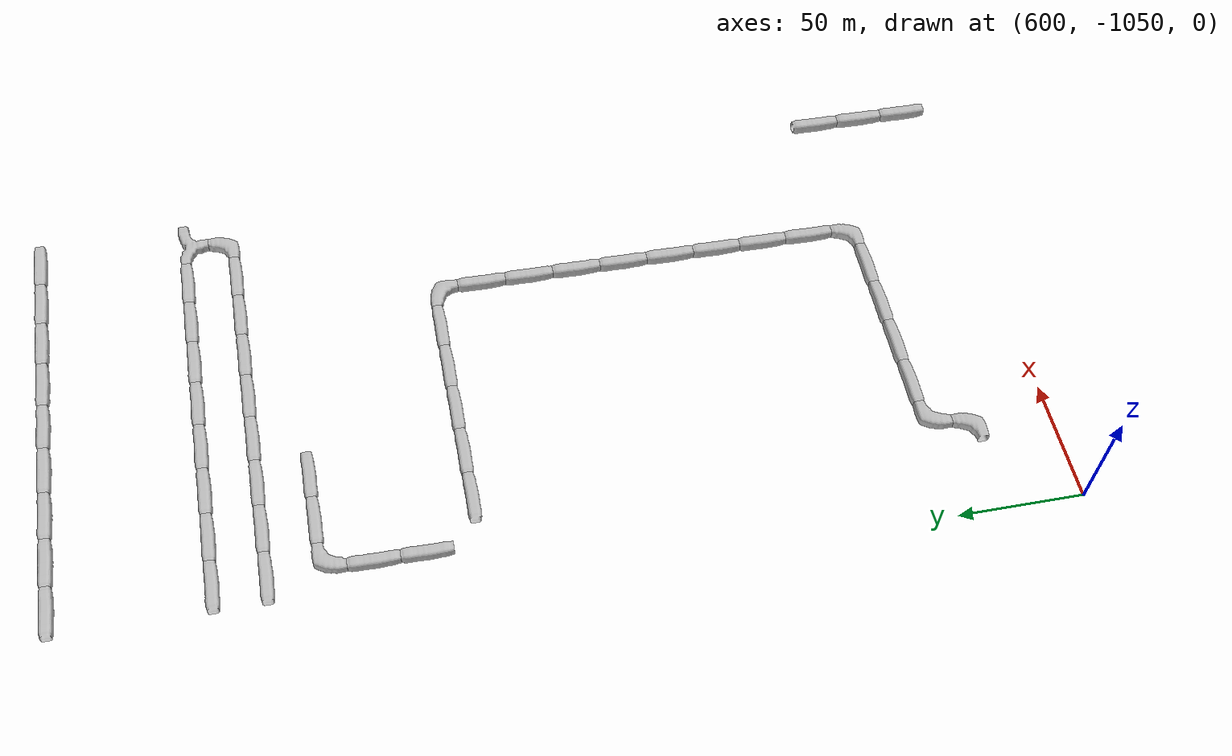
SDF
<sdf version="1.6">
 <world name="cave_32000_4">
  <include>
   <static>true</static>
   <name>cave_31_-37</name>
   <pose>620 -740 0 0 0 1.5707963267948966</pose>
   <uri>model://cave_straight_20m</uri>
  </include>
  <include>
   <static>true</static>
   <name>cave_32_-37</name>
   <pose>640 -740 0 0 0 1.5707963267948966</pose>
   <uri>model://cave_straight_20m</uri>
  </include>
  <include>
   <static>true</static>
   <name>cave_33_-37</name>
   <pose>660 -740 0 0 0 1.5707963267948966</pose>
   <uri>model://cave_straight_20m</uri>
  </include>
  <include>
   <static>true</static>
   <name>cave_34_-37</name>
   <pose>680 -740 0 0 0 1.5707963267948966</pose>
   <uri>model://cave_straight_20m</uri>
  </include>
  <include>
   <static>true</static>
   <name>cave_35_-37</name>
   <pose>700 -740 0 0 0 1.5707963267948966</pose>
   <uri>model://cave_straight_20m</uri>
  </include>
  <include>
   <static>true</static>
   <name>cave_36_-37</name>
   <pose>720 -740 0 0 0 1.5707963267948966</pose>
   <uri>model://cave_straight_20m</uri>
  </include>
  <include>
   <static>true</static>
   <name>cave_37_-37</name>
   <pose>740 -740 0 0 0 1.5707963267948966</pose>
   <uri>model://cave_straight_20m</uri>
  </include>
  <include>
   <static>true</static>
   <name>cave_38_-37</name>
   <pose>760 -740 0 0 0 1.5707963267948966</pose>
   <uri>model://cave_straight_20m</uri>
  </include>
  <include>
   <static>true</static>
   <name>cave_39_-37</name>
   <pose>780 -740 0 0 0 1.5707963267948966</pose>
   <uri>model://cave_L_20m</uri>
  </include>
  <include>
   <static>true</static>
   <name>cave_39_-36</name>
   <pose>780 -720 0 0 0 3.141592653589793</pose>
   <uri>model://cave_3way_20m</uri>
  </include>
  <include>
   <static>true</static>
   <name>cave_40_-50</name>
   <pose>800 -1000 0 0 0 0.0</pose>
   <uri>model://cave_straight_20m</uri>
  </include>
  <include>
   <static>true</static>
   <name>cave_40_-51</name>
   <pose>800 -1020 0 0 0 0.0</pose>
   <uri>model://cave_straight_20m</uri>
  </include>
  <include>
   <static>true</static>
   <name>cave_40_-52</name>
   <pose>800 -1040 0 0 0 0.0</pose>
   <uri>model://cave_straight_20m</uri>
  </include>
  <include>
   <static>true</static>
   <name>cave_38_-36</name>
   <pose>760 -720 0 0 0 1.5707963267948966</pose>
   <uri>model://cave_straight_20m</uri>
  </include>
  <include>
   <static>true</static>
   <name>cave_37_-36</name>
   <pose>740 -720 0 0 0 1.5707963267948966</pose>
   <uri>model://cave_straight_20m</uri>
  </include>
  <include>
   <static>true</static>
   <name>cave_36_-36</name>
   <pose>720 -720 0 0 0 1.5707963267948966</pose>
   <uri>model://cave_straight_20m</uri>
  </include>
  <include>
   <static>true</static>
   <name>cave_35_-36</name>
   <pose>700 -720 0 0 0 1.5707963267948966</pose>
   <uri>model://cave_straight_20m</uri>
  </include>
  <include>
   <static>true</static>
   <name>cave_34_-36</name>
   <pose>680 -720 0 0 0 1.5707963267948966</pose>
   <uri>model://cave_straight_20m</uri>
  </include>
  <include>
   <static>true</static>
   <name>cave_33_-36</name>
   <pose>660 -720 0 0 0 1.5707963267948966</pose>
   <uri>model://cave_straight_20m</uri>
  </include>
  <include>
   <static>true</static>
   <name>cave_32_-36</name>
   <pose>640 -720 0 0 0 1.5707963267948966</pose>
   <uri>model://cave_straight_20m</uri>
  </include>
  <include>
   <static>true</static>
   <name>cave_31_-36</name>
   <pose>620 -720 0 0 0 1.5707963267948966</pose>
   <uri>model://cave_straight_20m</uri>
  </include>
  <include>
   <static>true</static>
   <name>cave_31_-33</name>
   <pose>620 -660 0 0 0 1.5707963267948966</pose>
   <uri>model://cave_straight_20m</uri>
  </include>
  <include>
   <static>true</static>
   <name>cave_32_-33</name>
   <pose>640 -660 0 0 0 1.5707963267948966</pose>
   <uri>model://cave_straight_20m</uri>
  </include>
  <include>
   <static>true</static>
   <name>cave_33_-33</name>
   <pose>660 -660 0 0 0 1.5707963267948966</pose>
   <uri>model://cave_straight_20m</uri>
  </include>
  <include>
   <static>true</static>
   <name>cave_34_-33</name>
   <pose>680 -660 0 0 0 1.5707963267948966</pose>
   <uri>model://cave_straight_20m</uri>
  </include>
  <include>
   <static>true</static>
   <name>cave_35_-33</name>
   <pose>700 -660 0 0 0 1.5707963267948966</pose>
   <uri>model://cave_straight_20m</uri>
  </include>
  <include>
   <static>true</static>
   <name>cave_36_-33</name>
   <pose>720 -660 0 0 0 1.5707963267948966</pose>
   <uri>model://cave_straight_20m</uri>
  </include>
  <include>
   <static>true</static>
   <name>cave_37_-33</name>
   <pose>740 -660 0 0 0 1.5707963267948966</pose>
   <uri>model://cave_straight_20m</uri>
  </include>
  <include>
   <static>true</static>
   <name>cave_38_-33</name>
   <pose>760 -660 0 0 0 1.5707963267948966</pose>
   <uri>model://cave_straight_20m</uri>
  </include>
  <include>
   <static>true</static>
   <name>cave_39_-33</name>
   <pose>780 -660 0 0 0 1.5707963267948966</pose>
   <uri>model://cave_straight_20m</uri>
  </include>
  <include>
   <static>true</static>
   <name>cave_32_-51</name>
   <pose>640 -1020 0 0 0 1.5707963267948966</pose>
   <uri>model://cave_L_20m</uri>
  </include>
  <include>
   <static>true</static>
   <name>cave_32_-50</name>
   <pose>640 -1000 0 0 0 -1.5707963267948966</pose>
   <uri>model://cave_L_20m</uri>
  </include>
  <include>
   <static>true</static>
   <name>cave_33_-50</name>
   <pose>660 -1000 0 0 0 1.5707963267948966</pose>
   <uri>model://cave_straight_20m</uri>
  </include>
  <include>
   <static>true</static>
   <name>cave_34_-50</name>
   <pose>680 -1000 0 0 0 1.5707963267948966</pose>
   <uri>model://cave_straight_20m</uri>
  </include>
  <include>
   <static>true</static>
   <name>cave_35_-50</name>
   <pose>700 -1000 0 0 0 1.5707963267948966</pose>
   <uri>model://cave_straight_20m</uri>
  </include>
  <include>
   <static>true</static>
   <name>cave_36_-50</name>
   <pose>720 -1000 0 0 0 1.5707963267948966</pose>
   <uri>model://cave_straight_20m</uri>
  </include>
  <include>
   <static>true</static>
   <name>cave_37_-50</name>
   <pose>740 -1000 0 0 0 1.5707963267948966</pose>
   <uri>model://cave_L_20m</uri>
  </include>
  <include>
   <static>true</static>
   <name>cave_37_-49</name>
   <pose>740 -980 0 0 0 0.0</pose>
   <uri>model://cave_straight_20m</uri>
  </include>
  <include>
   <static>true</static>
   <name>cave_37_-48</name>
   <pose>740 -960 0 0 0 0.0</pose>
   <uri>model://cave_straight_20m</uri>
  </include>
  <include>
   <static>true</static>
   <name>cave_37_-47</name>
   <pose>740 -940 0 0 0 0.0</pose>
   <uri>model://cave_straight_20m</uri>
  </include>
  <include>
   <static>true</static>
   <name>cave_37_-46</name>
   <pose>740 -920 0 0 0 0.0</pose>
   <uri>model://cave_straight_20m</uri>
  </include>
  <include>
   <static>true</static>
   <name>cave_37_-45</name>
   <pose>740 -900 0 0 0 0.0</pose>
   <uri>model://cave_straight_20m</uri>
  </include>
  <include>
   <static>true</static>
   <name>cave_37_-44</name>
   <pose>740 -880 0 0 0 0.0</pose>
   <uri>model://cave_straight_20m</uri>
  </include>
  <include>
   <static>true</static>
   <name>cave_37_-43</name>
   <pose>740 -860 0 0 0 0.0</pose>
   <uri>model://cave_straight_20m</uri>
  </include>
  <include>
   <static>true</static>
   <name>cave_37_-42</name>
   <pose>740 -840 0 0 0 0.0</pose>
   <uri>model://cave_straight_20m</uri>
  </include>
  <include>
   <static>true</static>
   <name>cave_37_-41</name>
   <pose>740 -820 0 0 0 3.141592653589793</pose>
   <uri>model://cave_L_20m</uri>
  </include>
  <include>
   <static>true</static>
   <name>cave_36_-41</name>
   <pose>720 -820 0 0 0 1.5707963267948966</pose>
   <uri>model://cave_straight_20m</uri>
  </include>
  <include>
   <static>true</static>
   <name>cave_35_-41</name>
   <pose>700 -820 0 0 0 1.5707963267948966</pose>
   <uri>model://cave_straight_20m</uri>
  </include>
  <include>
   <static>true</static>
   <name>cave_34_-41</name>
   <pose>680 -820 0 0 0 1.5707963267948966</pose>
   <uri>model://cave_straight_20m</uri>
  </include>
  <include>
   <static>true</static>
   <name>cave_33_-41</name>
   <pose>660 -820 0 0 0 1.5707963267948966</pose>
   <uri>model://cave_straight_20m</uri>
  </include>
  <include>
   <static>true</static>
   <name>cave_32_-41</name>
   <pose>640 -820 0 0 0 1.5707963267948966</pose>
   <uri>model://cave_straight_20m</uri>
  </include>
  <include>
   <static>true</static>
   <name>cave_31_-40</name>
   <pose>620 -800 0 0 0 0.0</pose>
   <uri>model://cave_straight_20m</uri>
  </include>
  <include>
   <static>true</static>
   <name>cave_31_-39</name>
   <pose>620 -780 0 0 0 0.0</pose>
   <uri>model://cave_straight_20m</uri>
  </include>
  <include>
   <static>true</static>
   <name>cave_31_-38</name>
   <pose>620 -760 0 0 0 -1.5707963267948966</pose>
   <uri>model://cave_L_20m</uri>
  </include>
  <include>
   <static>true</static>
   <name>cave_32_-38</name>
   <pose>640 -760 0 0 0 1.5707963267948966</pose>
   <uri>model://cave_straight_20m</uri>
  </include>
  <include>
   <static>true</static>
   <name>cave_33_-38</name>
   <pose>660 -760 0 0 0 1.5707963267948966</pose>
   <uri>model://cave_straight_20m</uri>
  </include>
 </world>
</sdf>
